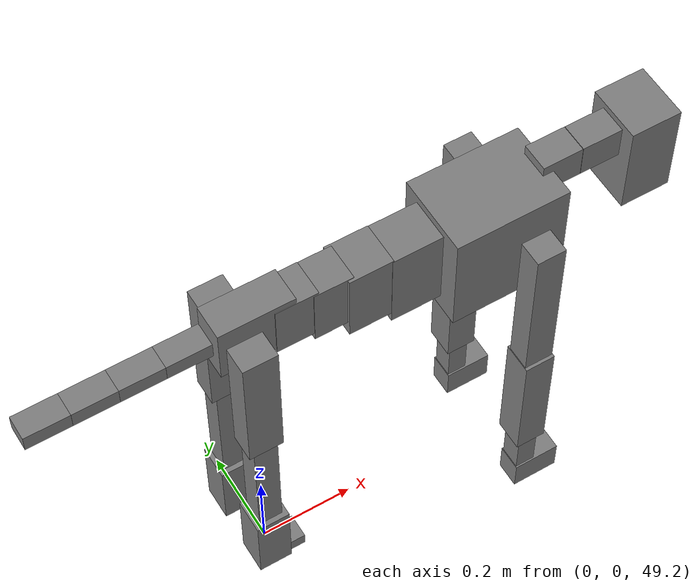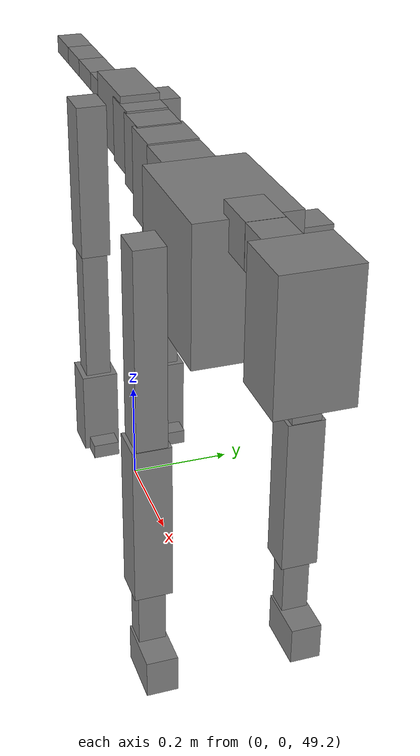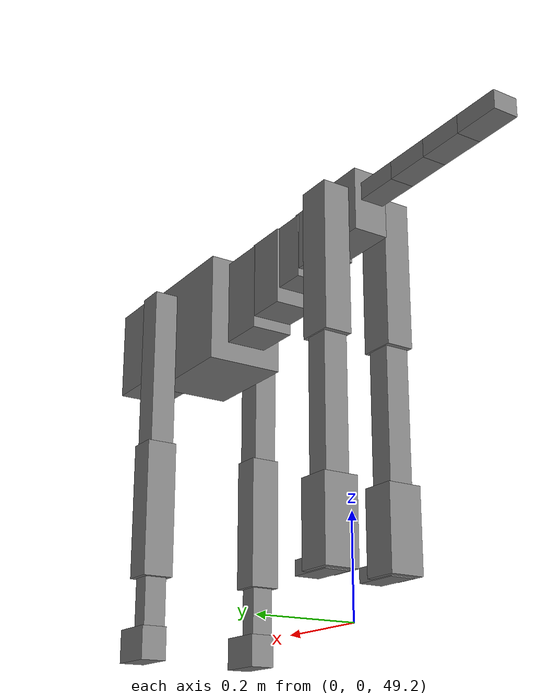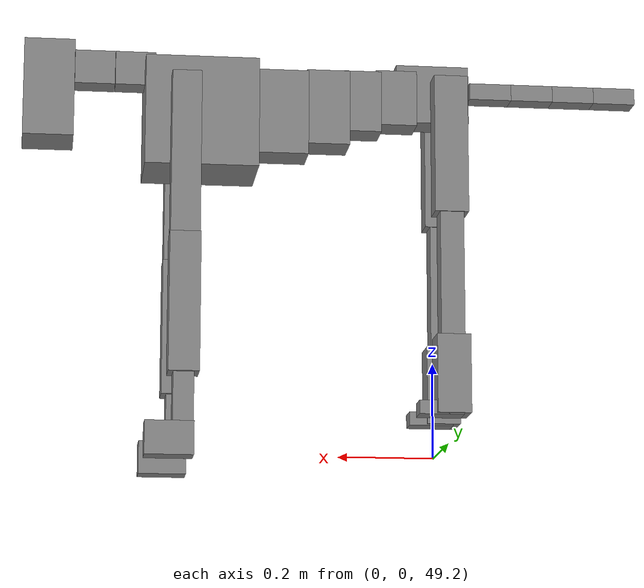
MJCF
<mujoco model="dog">

    <default>
        <joint armature="0.02" stiffness="1" damping="0.2" limited="true"/>
        <geom condim="3" friction="1 0.05 0.05" margin="0.01"/>
        <motor ctrllimited="true" ctrlrange="-1.0 1.0" forcelimited="true" gear="50"/>
    </default>

    <compiler inertiafromgeom="true" angle="radian"/>

    <option timestep="0.016" iterations="50" tolerance="1e-10" solver="Newton" jacobian="dense" cone="pyramidal"/>

    <size nconmax="20000" njmax="60000" nstack="5000000"/>
    <visual>
        <map force="0.1" zfar="30"/>
        <rgba haze="0.15 0.25 0.35 1"/>
        <quality shadowsize="2048"/>
        <global offwidth="800" offheight="800"/>
    </visual>

    <asset>
        <texture type="skybox" builtin="gradient" rgb1="0.3 0.5 0.7" rgb2="0 0 0" width="512" height="512"/>
        <texture name="texplane" type="2d" builtin="checker" rgb1=".2 .3 .4" rgb2=".1 0.15 0.2" width="512" height="512"
                 mark="cross" markrgb=".8 .8 .8"/>
        <texture name="texgeom" type="cube" builtin="flat" mark="cross" width="127" height="1278" rgb1="0.8 0.6 0.4"
                 rgb2="0.8 0.6 0.4" markrgb="1 1 1" random="0.01"/>

        <material name="matplane" reflectance="0.3" texture="texplane" texrepeat="1 1" texuniform="true"/>
        <material name="matgeom" texture="texgeom" texuniform="true" rgba="0.8 0.6 .4 1"/>
    </asset>

    <worldbody>
        <geom name="floor" pos="0 0 0" size="0 0 .25" type="plane" material="matplane" condim="3"/>

        <light directional="false" diffuse=".2 .2 .2" specular="0 0 0" pos="0 0 5" dir="0 0 -1" castshadow="false"/>
        <light mode="targetbodycom" target="torso" directional="false" diffuse=".8 .8 .8" specular="0.3 0.3 0.3"
               pos="0 0 4.0" dir="0 0 -1"/>

        <body name="root" pos="0 0 50">
            <freejoint name="root_1"/>
            <geom type="box" pos="0 0 -0.02" size="0.0774  0.0358  0.063" density="2030"/>

            <body name="spine1" pos="0.054 0 0">
                <joint name="spine1_y" axis="0 1 0" range="0 0.7" limited="true"/>
                <geom type="box" pos="0.02375 0 -0.03" size="0.04375  0.0375  0.05985" density="2030"/>

                <body name="spine2" pos="0.0612 0 0">
                    <joint name="spine2_y" axis="0 1 0" range="-0.15 0.15" limited="true"/>
                    <geom type="box" pos="0.03555  0  -0.04" size="0.04055  0.039  0.06615" density="2030"/>

                    <body name="spine3" pos="0.0730 0 0">
                        <joint name="spine3_y" axis="0 1 0" range="-0.15 0.15" limited="true"/>
                        <geom type="box" pos="0.03555  0  -0.057" size="0.04555  0.0445  0.081" density="2030"/>

                        <body name="spine4" pos="0.0780 0 0">
                            <joint name="spine4_y" axis="0 1 0" range="-0.15 0.15" limited="true"/>
                            <geom type="box" pos="0.05265  0  -0.07" size="0.05265  0.045  0.09135" density="2030"/>

                            <body name="torso" pos="0.1082 0 0">
                                <joint name="torso_y" axis="0 1 0" range="-0.15 0.15" limited="true"/>
                                <geom type="box" pos="0.11925  0  -0.085" size="0.11925  0.085  0.11745"
                                      density="2030"/>

                                <body name="neck1" pos="0.2160  0   0.0180">
                                    <joint name="neck1_y" axis="0 1 0" range="-1.2  -1" limited="true"/>
                                    <geom type="box" pos="0.0423  0  0" size="0.0423  0.03  0.036" density="2325"/>

                                    <body name="neck2" pos="0.0853  0  0">
                                        <joint name="neck2_y" axis="0 1 0" range="0.1  0" limited="true"/>
                                        <geom type="box" pos="0.0423  0  0" size="0.0423  0.03  0.036" density="2325"/>

                                        <body name="head" pos="0.0853  0  0">
                                            <joint name="head_y" axis="0 1 0" range="-0.3  -0.2" limited="true"/>
                                            <geom type="box" pos="0.0531  0  -0.055" size="0.0531  0.06  0.1044"
                                                  density="4030"/>

                                        </body>
                                    </body>
                                </body>

                                <body name="front_shoulder" pos="0.156  0   -0.0480">
                                    <joint name="front_shoulder_y" axis="0 1 0" range="-1 1.5" limited="true"/>
                                    <geom type="box" pos="0 0.13 -0.1586" size="0.0305  0.0260  0.1852" density="1158"/>
                                    <geom type="box" pos="0 -0.13 -0.1586" size="0.0305  0.0260  0.1852"
                                          density="1158"/>

                                    <body name="front_elbow" pos="0  0  -0.3172">
                                        <joint name="front_elbow_y" axis="0 1 0" range="-2 0" limited="true"/>
                                        <geom type="box" pos="0 0.13 -0.1447" size="0.0319  0.0326  0.1447"
                                              density="1081"/>
                                        <geom type="box" pos="0 -0.13 -0.1447" size="0.0319  0.0326  0.1447"
                                              density="1081"/>

                                        <body name="front_wrist" pos="0  0  -0.2893">
                                            <joint name="front_wrist_y" axis="0 1 0" range="-0.2 0" limited="true"/>
                                            <geom type="box" pos="0 0.13 -0.0580" size="0.0212  0.0236  0.0711"
                                                  density="1664"/>
                                            <geom type="box" pos="0 -0.13 -0.0580" size="0.0212  0.0236  0.0711"
                                                  density="1664"/>

                                            <body name="front_finger_end" pos="0  0  -0.1159">
                                                <joint name="front_finger_y" axis="0 1 0" range="-0.4 1"
                                                       limited="true"/>
                                                <geom type="box" pos="0.0272  0.13  -0.0195"
                                                      size="0.0499  0.0272  0.0345" density="1515"/>
                                                <geom type="box" pos="0.0272  -0.13  -0.0195"
                                                      size="0.0499  0.0272  0.0345" density="1515"/>

                                            </body>

                                        </body>
                                    </body>
                                </body>

                            </body>
                        </body>
                    </body>
                </body>
            </body>

            <body name="back_hip" pos="-0.03 0 -0.018">
                <joint name="back_hip_y" axis="0 1 0" range="-1.5 0.3" limited="true"/>
                <geom type="box" pos="0 0.07 -0.1251" size="0.0355  0.0278  0.1479" density="1154"/>
                <geom type="box" pos="0 -0.07 -0.1251" size="0.0355  0.0278  0.1479" density="1154"/>

                <body name="back_knee" pos="0  0  -0.2503">
                    <joint name="back_knee_y" axis="0 1 0" range="0 2.8" limited="true"/>
                    <geom type="box" pos="0 0.07 -0.1484" size="0.0249  0.0245  0.1639" density="1227"/>
                    <geom type="box" pos="0 -0.07 -0.1484" size="0.0249  0.0245  0.1639" density="1227"/>

                    <body name="back_ankle" pos="0  0  -0.2968">
                        <joint name="back_ankle_y" axis="0 1 0" range="-2.2 0" limited="true"/>
                        <geom type="box" pos="0 0.07 -0.0711" size="0.0351  0.0351  0.0824" density="1284"/>
                        <geom type="box" pos="0 -0.07 -0.0711" size="0.0351  0.0351  0.0824" density="1284"/>

                        <body name="back_toe_end" pos="0  0  -0.1422">
                            <joint name="back_toe_y" axis="0 1 0" range="-0.4 1" limited="true"/>
                            <geom type="box" pos="0.0253  0.07  0.0008" size="0.0463  0.0253  0.0142" density="1515"/>
                            <geom type="box" pos="0.0253  -0.07  0.0008" size="0.0463  0.0253  0.0142" density="1515"/>

                        </body>
                    </body>
                </body>
            </body>

            <body name="tail1" pos="-0.074 0 -0.006">
                <joint name="tail1_y" axis="0 1 0" range="-0.2 0.2" limited="true"/>
                <geom type="box" pos="-0.0536  0  0" size="0.045  0.025  0.0175" density="1587"/>

                <body name="tail2" pos="-0.09 0 0">
                    <joint name="tail2_y" axis="0 1 0" range="-0.2 0.2" limited="true"/>
                    <geom type="box" pos="-0.0536  0  0" size="0.045  0.025  0.0175" density="1587"/>

                    <body name="tail3" pos="-0.09 0 0">
                        <joint name="tail3_y" axis="0 1 0" range="-0.2 0.2" limited="true"/>
                        <geom type="box" pos="-0.0536  0  0" size="0.045  0.025  0.0175" density="1587"/>

                        <body name="tail4" pos="-0.09 0 0">
                            <joint name="tail4_y" axis="0 1 0" range="-0.2 0.2" limited="true"/>
                            <geom type="box" pos="-0.0536  0  0" size="0.045  0.025  0.0175" density="1587"/>

                        </body>
                    </body>
                </body>
            </body>
        </body>
    </worldbody>

    <actuator>
        <motor joint="spine1_y" forcerange="-150 150     "/>
        <motor joint="spine2_y" forcerange="-150 150     "/>
        <motor joint="spine3_y" forcerange="-150 150     "/>
        <motor joint="spine4_y" forcerange="-150 150     "/>
        <motor joint="torso_y" forcerange="-150 150     "/>
        <motor joint="neck1_y" forcerange="-100 100       "/>
        <motor joint="neck2_y" forcerange="-100 100       "/>
        <motor joint="head_y" forcerange="-150 150       "/>
        <motor joint="front_shoulder_y" forcerange="-157.41 116.21"/>
        <motor joint="front_elbow_y" forcerange="-142.88 194.43"/>
        <motor joint="front_wrist_y" forcerange="-103.69 85.16"/>
        <motor joint="front_finger_y" forcerange="-64.16 41.11"/>
        <motor joint="back_hip_y" forcerange="-272.45 298.83"/>
        <motor joint="back_knee_y" forcerange="-229.79 326.84"/>
        <motor joint="back_angle_y" forcerange="-248.87 212.75"/>
        <motor joint="back_toe_y" forcerange="-84.51 37.74"/>
        <motor joint="tail1_y" forcerange="-50 50     "/>
        <motor joint="tail2_y" forcerange="-50 50     "/>
        <motor joint="tail3_y" forcerange="-50 50     "/>
        <motor joint="tail4_y" forcerange="-50 50     "/>
    </actuator>
</mujoco>
